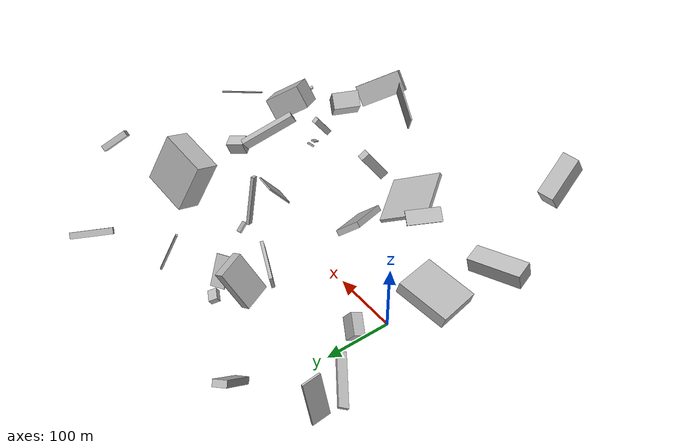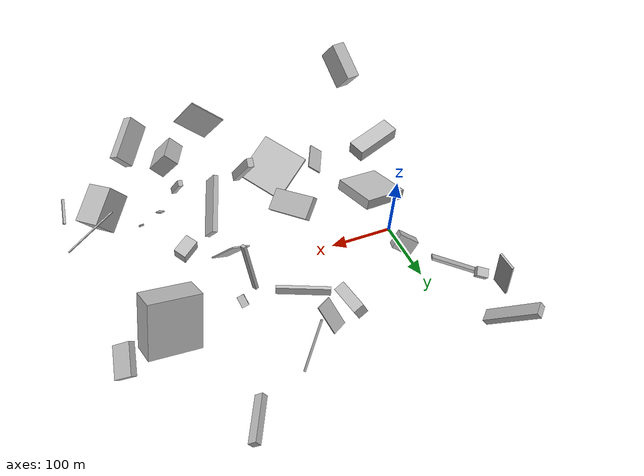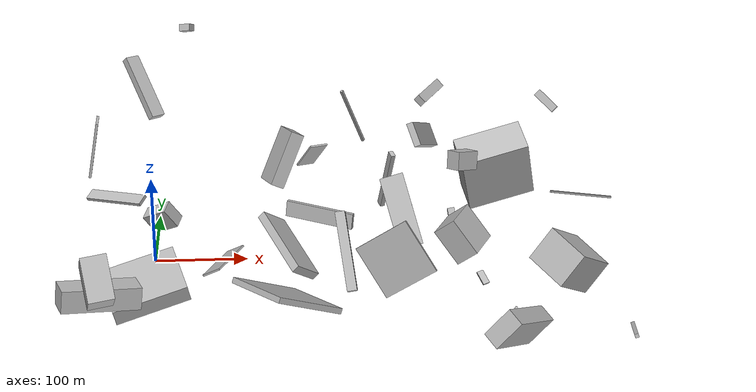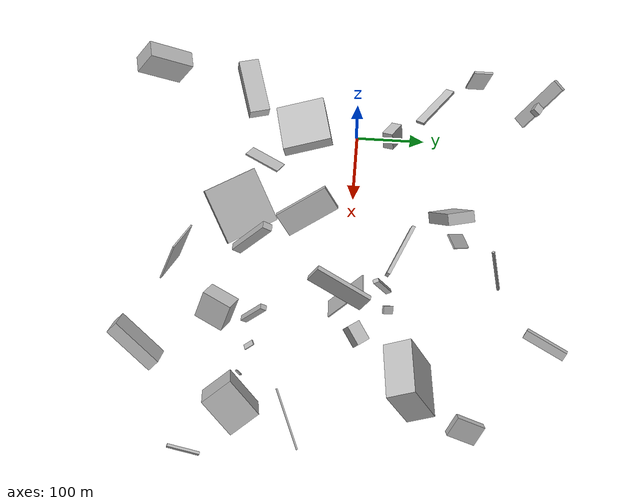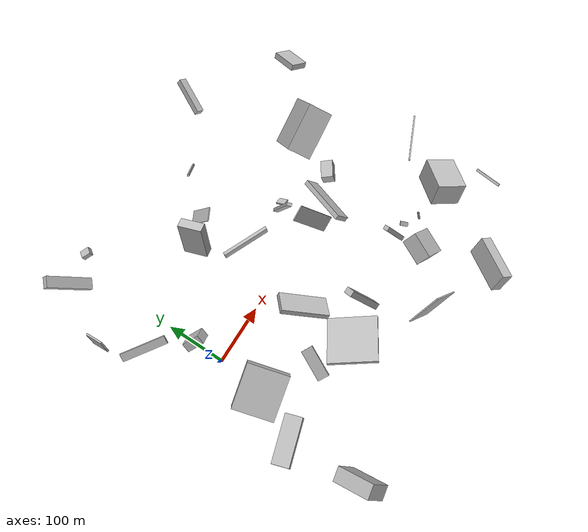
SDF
<sdf version="1.6">
 <world name="default">
  <scene>
   <sky><clouds><speed>12</speed></clouds></sky>
   <ambient>0.4 0.4 0.4 1</ambient>
   <background>0.7 0.7 0.7 1</background>
   <shadows>1</shadows>
  </scene>
  <gravity>0 0 -9.8066</gravity>
  <magnetic_field>6e-06 2.3e-05 -4.2e-05</magnetic_field>
  <physics default="0" name="default_physics" type="ode">
   <ode>
    <solver>
     <type>quick</type>
     <iters>10</iters>
     <sor>1.0</sor>
     <use_dynamic_moi_rescaling>0</use_dynamic_moi_rescaling>
    </solver>
    <constraints>
     <cfm>0</cfm>
     <erp>0.2</erp>
     <contact_max_correcting_vel>100</contact_max_correcting_vel>
     <contact_surface_layer>0.001</contact_surface_layer>
    </constraints>
   </ode>
   <max_step_size>0.004</max_step_size>
   <real_time_factor>1</real_time_factor>
   <real_time_update_rate>250</real_time_update_rate>
  </physics>
  <light name="sun" type="directional">
   <pose>0 0 10 0 0 0</pose>
   <diffuse>0.8 0.8 0.8 1</diffuse>
   <specular>0.2 0.2 0.2 1</specular>
   <attenuation>
    <range>1000</range>
    <constant>0.9</constant>
    <linear>0.01</linear>
    <quadratic>0.001</quadratic>
   </attenuation>
   <direction>-0.5 0.1 -0.9</direction>
  </light>
  <model name="building_1">
   <static>0</static>
   <pose>18.265541002460495 46.083040076944286 32.43423120301533 2.0796998660286277 0.32131733882747143 -1.8867793603360223</pose>
   <link name="link">
    <gravity>0</gravity>
    <pose>0 0 16.0 0 0 0</pose>
    <collision name="collision"><geometry><box><size>16 25 32</size></box></geometry></collision>
    <visual name="visual">
     <cast_shadows>0</cast_shadows>
     <geometry><box><size>16 25 32</size></box></geometry>
     <material>
      <script>
       <uri>model://HANNAS_wall/materials/scripts</uri>
       <uri>model://HANNAS_wall/materials/textures</uri>
       <name>vrc/HANNAS_wall</name>
      </script>
     </material>
    </visual>
   </link>
  </model>
  <model name="building_2">
   <static>0</static>
   <pose>-17.983890007790546 262.79387058333293 89.90950521232621 1.4102466719066682 -0.7541241065333378 -0.7375637108555613</pose>
   <link name="link">
    <gravity>0</gravity>
    <pose>0 0 9.0 0 0 0</pose>
    <collision name="collision"><geometry><box><size>9 80 18</size></box></geometry></collision>
    <visual name="visual">
     <cast_shadows>0</cast_shadows>
     <geometry><box><size>9 80 18</size></box></geometry>
     <material>
      <script>
       <uri>model://HANNAS_wall/materials/scripts</uri>
       <uri>model://HANNAS_wall/materials/textures</uri>
       <name>vrc/HANNAS_wall</name>
      </script>
     </material>
    </visual>
   </link>
  </model>
  <model name="building_3">
   <static>0</static>
   <pose>313.8914860704063 -131.33494192955447 76.24285865353437 0.18718537942882582 -0.6289172520342305 -1.657099727545331</pose>
   <link name="link">
    <gravity>0</gravity>
    <pose>0 0 24.0 0 0 0</pose>
    <collision name="collision"><geometry><box><size>9 7 48</size></box></geometry></collision>
    <visual name="visual">
     <cast_shadows>0</cast_shadows>
     <geometry><box><size>9 7 48</size></box></geometry>
     <material>
      <script>
       <uri>model://HANNAS_wall/materials/scripts</uri>
       <uri>model://HANNAS_wall/materials/textures</uri>
       <name>vrc/HANNAS_wall</name>
      </script>
     </material>
    </visual>
   </link>
  </model>
  <model name="building_4">
   <static>0</static>
   <pose>304.0788032327979 -158.6898377105259 110.06910643936789 0.8497594588884857 0.040560128187024716 1.1148889942754299</pose>
   <link name="link">
    <gravity>0</gravity>
    <pose>0 0 12.5 0 0 0</pose>
    <collision name="collision"><geometry><box><size>40 39 25</size></box></geometry></collision>
    <visual name="visual">
     <cast_shadows>0</cast_shadows>
     <geometry><box><size>40 39 25</size></box></geometry>
     <material>
      <script>
       <uri>model://HANNAS_wall/materials/scripts</uri>
       <uri>model://HANNAS_wall/materials/textures</uri>
       <name>vrc/HANNAS_wall</name>
      </script>
     </material>
    </visual>
   </link>
  </model>
  <model name="building_5">
   <static>0</static>
   <pose>-80.99406334003635 175.29140529267212 53.03134347957438 1.7545518483100713 0.07609060224564128 1.6130176660576054</pose>
   <link name="link">
    <gravity>0</gravity>
    <pose>0 0 1.5 0 0 0</pose>
    <collision name="collision"><geometry><box><size>27 68 3</size></box></geometry></collision>
    <visual name="visual">
     <cast_shadows>0</cast_shadows>
     <geometry><box><size>27 68 3</size></box></geometry>
     <material>
      <script>
       <uri>model://HANNAS_wall/materials/scripts</uri>
       <uri>model://HANNAS_wall/materials/textures</uri>
       <name>vrc/HANNAS_wall</name>
      </script>
     </material>
    </visual>
   </link>
  </model>
  <model name="building_6">
   <static>0</static>
   <pose>161.26148397386333 -94.99562241516497 37.81341449783922 -1.1294429303980962 0.6345326476909404 0.7506650084264824</pose>
   <link name="link">
    <gravity>0</gravity>
    <pose>0 0 40.0 0 0 0</pose>
    <collision name="collision"><geometry><box><size>36 9 80</size></box></geometry></collision>
    <visual name="visual">
     <cast_shadows>0</cast_shadows>
     <geometry><box><size>36 9 80</size></box></geometry>
     <material>
      <script>
       <uri>model://HANNAS_wall/materials/scripts</uri>
       <uri>model://HANNAS_wall/materials/textures</uri>
       <name>vrc/HANNAS_wall</name>
      </script>
     </material>
    </visual>
   </link>
  </model>
  <model name="building_7">
   <static>0</static>
   <pose>134.36413306917154 158.72428977492189 47.36783056296732 1.0752400505219164 -1.0248321617027825 0.7457237126499242</pose>
   <link name="link">
    <gravity>0</gravity>
    <pose>0 0 20.0 0 0 0</pose>
    <collision name="collision"><geometry><box><size>65 16 40</size></box></geometry></collision>
    <visual name="visual">
     <cast_shadows>0</cast_shadows>
     <geometry><box><size>65 16 40</size></box></geometry>
     <material>
      <script>
       <uri>model://HANNAS_wall/materials/scripts</uri>
       <uri>model://HANNAS_wall/materials/textures</uri>
       <name>vrc/HANNAS_wall</name>
      </script>
     </material>
    </visual>
   </link>
  </model>
  <model name="building_8">
   <static>0</static>
   <pose>206.17875969422664 -154.44131894354558 51.33544223301038 0.6173299713353829 0.16630867701832566 3.1313034820022594</pose>
   <link name="link">
    <gravity>0</gravity>
    <pose>0 0 40.0 0 0 0</pose>
    <collision name="collision"><geometry><box><size>10 14 80</size></box></geometry></collision>
    <visual name="visual">
     <cast_shadows>0</cast_shadows>
     <geometry><box><size>10 14 80</size></box></geometry>
     <material>
      <script>
       <uri>model://HANNAS_wall/materials/scripts</uri>
       <uri>model://HANNAS_wall/materials/textures</uri>
       <name>vrc/HANNAS_wall</name>
      </script>
     </material>
    </visual>
   </link>
  </model>
  <model name="building_9">
   <static>0</static>
   <pose>-7.309113164373815 -80.11171100656178 25.808819422333997 -2.9165752327797825 0.1139150292912665 -1.3144206211646154</pose>
   <link name="link">
    <gravity>0</gravity>
    <pose>0 0 8.5 0 0 0</pose>
    <collision name="collision"><geometry><box><size>72 80 17</size></box></geometry></collision>
    <visual name="visual">
     <cast_shadows>0</cast_shadows>
     <geometry><box><size>72 80 17</size></box></geometry>
     <material>
      <script>
       <uri>model://HANNAS_wall/materials/scripts</uri>
       <uri>model://HANNAS_wall/materials/textures</uri>
       <name>vrc/HANNAS_wall</name>
      </script>
     </material>
    </visual>
   </link>
  </model>
  <model name="building_10">
   <static>0</static>
   <pose>110.53042911366602 -173.64503171100733 67.30888535876636 2.768466732700812 -1.0492835858454677 0.9555197421061739</pose>
   <link name="link">
    <gravity>0</gravity>
    <pose>0 0 40.0 0 0 0</pose>
    <collision name="collision"><geometry><box><size>6 80 80</size></box></geometry></collision>
    <visual name="visual">
     <cast_shadows>0</cast_shadows>
     <geometry><box><size>6 80 80</size></box></geometry>
     <material>
      <script>
       <uri>model://HANNAS_wall/materials/scripts</uri>
       <uri>model://HANNAS_wall/materials/textures</uri>
       <name>vrc/HANNAS_wall</name>
      </script>
     </material>
    </visual>
   </link>
  </model>
  <model name="building_11">
   <static>0</static>
   <pose>165.2793010471291 146.117188659899 50.177551806339046 1.6965412428965363 -0.6583561573605212 1.9616489250245077</pose>
   <link name="link">
    <gravity>0</gravity>
    <pose>0 0 11.0 0 0 0</pose>
    <collision name="collision"><geometry><box><size>2 45 22</size></box></geometry></collision>
    <visual name="visual">
     <cast_shadows>0</cast_shadows>
     <geometry><box><size>2 45 22</size></box></geometry>
     <material>
      <script>
       <uri>model://HANNAS_wall/materials/scripts</uri>
       <uri>model://HANNAS_wall/materials/textures</uri>
       <name>vrc/HANNAS_wall</name>
      </script>
     </material>
    </visual>
   </link>
  </model>
  <model name="building_12">
   <static>0</static>
   <pose>90.4210251522565 -102.28279757551235 72.45496664842383 -1.5582350451654448 0.5747509461664084 2.6771038669529066</pose>
   <link name="link">
    <gravity>0</gravity>
    <pose>0 0 26.0 0 0 0</pose>
    <collision name="collision"><geometry><box><size>22 2 52</size></box></geometry></collision>
    <visual name="visual">
     <cast_shadows>0</cast_shadows>
     <geometry><box><size>22 2 52</size></box></geometry>
     <material>
      <script>
       <uri>model://HANNAS_wall/materials/scripts</uri>
       <uri>model://HANNAS_wall/materials/textures</uri>
       <name>vrc/HANNAS_wall</name>
      </script>
     </material>
    </visual>
   </link>
  </model>
  <model name="building_13">
   <static>0</static>
   <pose>144.66492083559024 89.04152041481588 13.659103035037283 -1.5944472664839189 -0.17865650644008235 -1.9873187592592076</pose>
   <link name="link">
    <gravity>0</gravity>
    <pose>0 0 40.0 0 0 0</pose>
    <collision name="collision"><geometry><box><size>5 18 80</size></box></geometry></collision>
    <visual name="visual">
     <cast_shadows>0</cast_shadows>
     <geometry><box><size>5 18 80</size></box></geometry>
     <material>
      <script>
       <uri>model://HANNAS_wall/materials/scripts</uri>
       <uri>model://HANNAS_wall/materials/textures</uri>
       <name>vrc/HANNAS_wall</name>
      </script>
     </material>
    </visual>
   </link>
  </model>
  <model name="building_14">
   <static>0</static>
   <pose>251.88997737494782 48.03405861332712 69.00199444174234 1.6046435566531305 -0.2862162751374198 1.930118034578801</pose>
   <link name="link">
    <gravity>0</gravity>
    <pose>0 0 2.5 0 0 0</pose>
    <collision name="collision"><geometry><box><size>8 75 5</size></box></geometry></collision>
    <visual name="visual">
     <cast_shadows>0</cast_shadows>
     <geometry><box><size>8 75 5</size></box></geometry>
     <material>
      <script>
       <uri>model://HANNAS_wall/materials/scripts</uri>
       <uri>model://HANNAS_wall/materials/textures</uri>
       <name>vrc/HANNAS_wall</name>
      </script>
     </material>
    </visual>
   </link>
  </model>
  <model name="building_15">
   <static>0</static>
   <pose>374.4145121486141 -241.6706514346999 63.73774618429702 -1.0709778807591486 -0.4931151684090535 2.2580161294457413</pose>
   <link name="link">
    <gravity>0</gravity>
    <pose>0 0 37.0 0 0 0</pose>
    <collision name="collision"><geometry><box><size>18 34 74</size></box></geometry></collision>
    <visual name="visual">
     <cast_shadows>0</cast_shadows>
     <geometry><box><size>18 34 74</size></box></geometry>
     <material>
      <script>
       <uri>model://HANNAS_wall/materials/scripts</uri>
       <uri>model://HANNAS_wall/materials/textures</uri>
       <name>vrc/HANNAS_wall</name>
      </script>
     </material>
    </visual>
   </link>
  </model>
  <model name="building_16">
   <static>0</static>
   <pose>456.8023341233861 154.22280260607008 99.90250303356879 0.8680768576082394 -0.4471278572657238 -1.7770121106217966</pose>
   <link name="link">
    <gravity>0</gravity>
    <pose>0 0 14.0 0 0 0</pose>
    <collision name="collision"><geometry><box><size>40 9 28</size></box></geometry></collision>
    <visual name="visual">
     <cast_shadows>0</cast_shadows>
     <geometry><box><size>40 9 28</size></box></geometry>
     <material>
      <script>
       <uri>model://HANNAS_wall/materials/scripts</uri>
       <uri>model://HANNAS_wall/materials/textures</uri>
       <name>vrc/HANNAS_wall</name>
      </script>
     </material>
    </visual>
   </link>
  </model>
  <model name="building_17">
   <static>0</static>
   <pose>-45.55279262322207 -157.0357984654406 42.405328461933735 -0.14716080735664366 -0.13451682296932715 -1.2525185846556424</pose>
   <link name="link">
    <gravity>0</gravity>
    <pose>0 0 11.5 0 0 0</pose>
    <collision name="collision"><geometry><box><size>29 80 23</size></box></geometry></collision>
    <visual name="visual">
     <cast_shadows>0</cast_shadows>
     <geometry><box><size>29 80 23</size></box></geometry>
     <material>
      <script>
       <uri>model://HANNAS_wall/materials/scripts</uri>
       <uri>model://HANNAS_wall/materials/textures</uri>
       <name>vrc/HANNAS_wall</name>
      </script>
     </material>
    </visual>
   </link>
  </model>
  <model name="building_18">
   <static>0</static>
   <pose>343.6070806140507 -123.49740952305174 45.791422089869286 -1.8224690834781203 1.0044992595008946 1.7464105338837623</pose>
   <link name="link">
    <gravity>0</gravity>
    <pose>0 0 3.5 0 0 0</pose>
    <collision name="collision"><geometry><box><size>2 15 7</size></box></geometry></collision>
    <visual name="visual">
     <cast_shadows>0</cast_shadows>
     <geometry><box><size>2 15 7</size></box></geometry>
     <material>
      <script>
       <uri>model://HANNAS_wall/materials/scripts</uri>
       <uri>model://HANNAS_wall/materials/textures</uri>
       <name>vrc/HANNAS_wall</name>
      </script>
     </material>
    </visual>
   </link>
  </model>
  <model name="building_19">
   <static>0</static>
   <pose>447.5805049229347 -61.59204561626373 103.66692804641251 -0.31450220965210135 -0.06535974234903005 -1.1405932782110482</pose>
   <link name="link">
    <gravity>0</gravity>
    <pose>0 0 1.0 0 0 0</pose>
    <collision name="collision"><geometry><box><size>2 80 2</size></box></geometry></collision>
    <visual name="visual">
     <cast_shadows>0</cast_shadows>
     <geometry><box><size>2 80 2</size></box></geometry>
     <material>
      <script>
       <uri>model://HANNAS_wall/materials/scripts</uri>
       <uri>model://HANNAS_wall/materials/textures</uri>
       <name>vrc/HANNAS_wall</name>
      </script>
     </material>
    </visual>
   </link>
  </model>
  <model name="building_20">
   <static>0</static>
   <pose>382.6745064044026 72.87423016412816 54.25479060209828 0.5943242293173583 -1.1235884775113516 -2.02070051168839</pose>
   <link name="link">
    <gravity>0</gravity>
    <pose>0 0 19.5 0 0 0</pose>
    <collision name="collision"><geometry><box><size>80 76 39</size></box></geometry></collision>
    <visual name="visual">
     <cast_shadows>0</cast_shadows>
     <geometry><box><size>80 76 39</size></box></geometry>
     <material>
      <script>
       <uri>model://HANNAS_wall/materials/scripts</uri>
       <uri>model://HANNAS_wall/materials/textures</uri>
       <name>vrc/HANNAS_wall</name>
      </script>
     </material>
    </visual>
   </link>
  </model>
  <model name="building_21">
   <static>0</static>
   <pose>268.73569086410333 58.384941312719235 10.978600197998158 -0.6867187966878666 0.39545642905804995 -0.03880639315715627</pose>
   <link name="link">
    <gravity>0</gravity>
    <pose>0 0 1.5 0 0 0</pose>
    <collision name="collision"><geometry><box><size>11 17 3</size></box></geometry></collision>
    <visual name="visual">
     <cast_shadows>0</cast_shadows>
     <geometry><box><size>11 17 3</size></box></geometry>
     <material>
      <script>
       <uri>model://HANNAS_wall/materials/scripts</uri>
       <uri>model://HANNAS_wall/materials/textures</uri>
       <name>vrc/HANNAS_wall</name>
      </script>
     </material>
    </visual>
   </link>
  </model>
  <model name="building_22">
   <static>0</static>
   <pose>-18.79025968061933 92.50223760807307 24.972236021358924 2.026095243784859 -1.128704931888774 -2.5928617885137375</pose>
   <link name="link">
    <gravity>0</gravity>
    <pose>0 0 40.0 0 0 0</pose>
    <collision name="collision"><geometry><box><size>4 14 80</size></box></geometry></collision>
    <visual name="visual">
     <cast_shadows>0</cast_shadows>
     <geometry><box><size>4 14 80</size></box></geometry>
     <material>
      <script>
       <uri>model://HANNAS_wall/materials/scripts</uri>
       <uri>model://HANNAS_wall/materials/textures</uri>
       <name>vrc/HANNAS_wall</name>
      </script>
     </material>
    </visual>
   </link>
  </model>
  <model name="building_23">
   <static>0</static>
   <pose>254.49485011784327 -0.2837712996253985 51.323486188678686 1.127543640512306 -0.8981395463899916 1.9793774234130213</pose>
   <link name="link">
    <gravity>0</gravity>
    <pose>0 0 13.0 0 0 0</pose>
    <collision name="collision"><geometry><box><size>80 2 26</size></box></geometry></collision>
    <visual name="visual">
     <cast_shadows>0</cast_shadows>
     <geometry><box><size>80 2 26</size></box></geometry>
     <material>
      <script>
       <uri>model://HANNAS_wall/materials/scripts</uri>
       <uri>model://HANNAS_wall/materials/textures</uri>
       <name>vrc/HANNAS_wall</name>
      </script>
     </material>
    </visual>
   </link>
  </model>
  <model name="building_24">
   <static>0</static>
   <pose>290.7675985853824 -12.742705586021884 139.70097279831708 0.4951722347096444 -0.4467645995369145 -1.9226609153249443</pose>
   <link name="link">
    <gravity>0</gravity>
    <pose>0 0 12.5 0 0 0</pose>
    <collision name="collision"><geometry><box><size>80 7 25</size></box></geometry></collision>
    <visual name="visual">
     <cast_shadows>0</cast_shadows>
     <geometry><box><size>80 7 25</size></box></geometry>
     <material>
      <script>
       <uri>model://HANNAS_wall/materials/scripts</uri>
       <uri>model://HANNAS_wall/materials/textures</uri>
       <name>vrc/HANNAS_wall</name>
      </script>
     </material>
    </visual>
   </link>
  </model>
  <model name="building_25">
   <static>0</static>
   <pose>344.23382968041267 25.428368167611374 103.66999526600024 -1.3298552548804006 0.22442885981386743 2.2225151998477335</pose>
   <link name="link">
    <gravity>0</gravity>
    <pose>0 0 13.5 0 0 0</pose>
    <collision name="collision"><geometry><box><size>18 20 27</size></box></geometry></collision>
    <visual name="visual">
     <cast_shadows>0</cast_shadows>
     <geometry><box><size>18 20 27</size></box></geometry>
     <material>
      <script>
       <uri>model://HANNAS_wall/materials/scripts</uri>
       <uri>model://HANNAS_wall/materials/textures</uri>
       <name>vrc/HANNAS_wall</name>
      </script>
     </material>
    </visual>
   </link>
  </model>
  <model name="building_26">
   <static>0</static>
   <pose>-34.251433276728264 -244.96539468174007 119.73847178382488 -0.11574107325193543 -0.9190093795298385 1.8833205265994406</pose>
   <link name="link">
    <gravity>0</gravity>
    <pose>0 0 32.0 0 0 0</pose>
    <collision name="collision"><geometry><box><size>41 24 64</size></box></geometry></collision>
    <visual name="visual">
     <cast_shadows>0</cast_shadows>
     <geometry><box><size>41 24 64</size></box></geometry>
     <material>
      <script>
       <uri>model://HANNAS_wall/materials/scripts</uri>
       <uri>model://HANNAS_wall/materials/textures</uri>
       <name>vrc/HANNAS_wall</name>
      </script>
     </material>
    </visual>
   </link>
  </model>
  <model name="building_27">
   <static>0</static>
   <pose>319.36357701602003 267.56746804469657 69.40810893456158 -0.04966562176599342 0.7067312705168404 -0.5175808603163954</pose>
   <link name="link">
    <gravity>0</gravity>
    <pose>0 0 4.5 0 0 0</pose>
    <collision name="collision"><geometry><box><size>12 59 9</size></box></geometry></collision>
    <visual name="visual">
     <cast_shadows>0</cast_shadows>
     <geometry><box><size>12 59 9</size></box></geometry>
     <material>
      <script>
       <uri>model://HANNAS_wall/materials/scripts</uri>
       <uri>model://HANNAS_wall/materials/textures</uri>
       <name>vrc/HANNAS_wall</name>
      </script>
     </material>
    </visual>
   </link>
  </model>
  <model name="building_28">
   <static>0</static>
   <pose>242.76946282417964 -223.1788703842108 127.08136680060068 1.8477826119292529 -0.8845540655075038 2.5193464934117964</pose>
   <link name="link">
    <gravity>0</gravity>
    <pose>0 0 1.0 0 0 0</pose>
    <collision name="collision"><geometry><box><size>55 59 2</size></box></geometry></collision>
    <visual name="visual">
     <cast_shadows>0</cast_shadows>
     <geometry><box><size>55 59 2</size></box></geometry>
     <material>
      <script>
       <uri>model://HANNAS_wall/materials/scripts</uri>
       <uri>model://HANNAS_wall/materials/textures</uri>
       <name>vrc/HANNAS_wall</name>
      </script>
     </material>
    </visual>
   </link>
  </model>
  <model name="building_29">
   <static>0</static>
   <pose>441.03807410078764 -119.41295797122073 55.39220057433994 0.4997304415938906 -0.9248681836147483 0.24013538282744257</pose>
   <link name="link">
    <gravity>0</gravity>
    <pose>0 0 29.5 0 0 0</pose>
    <collision name="collision"><geometry><box><size>38 46 59</size></box></geometry></collision>
    <visual name="visual">
     <cast_shadows>0</cast_shadows>
     <geometry><box><size>38 46 59</size></box></geometry>
     <material>
      <script>
       <uri>model://HANNAS_wall/materials/scripts</uri>
       <uri>model://HANNAS_wall/materials/textures</uri>
       <name>vrc/HANNAS_wall</name>
      </script>
     </material>
    </visual>
   </link>
  </model>
  <model name="building_30">
   <static>0</static>
   <pose>211.36035116212418 191.81623161713833 111.07182620492381 2.985353532046033 -0.3795493306521978 0.9712022138067317</pose>
   <link name="link">
    <gravity>0</gravity>
    <pose>0 0 40.0 0 0 0</pose>
    <collision name="collision"><geometry><box><size>3 3 80</size></box></geometry></collision>
    <visual name="visual">
     <cast_shadows>0</cast_shadows>
     <geometry><box><size>3 3 80</size></box></geometry>
     <material>
      <script>
       <uri>model://HANNAS_wall/materials/scripts</uri>
       <uri>model://HANNAS_wall/materials/textures</uri>
       <name>vrc/HANNAS_wall</name>
      </script>
     </material>
    </visual>
   </link>
  </model>
  <model name="building_31">
   <static>0</static>
   <pose>28.73304191936882 234.1766264424584 177.39459762556493 2.027221060428074 0.25053307359437843 2.6712991434781657</pose>
   <link name="link">
    <gravity>0</gravity>
    <pose>0 0 5.5 0 0 0</pose>
    <collision name="collision"><geometry><box><size>14 8 11</size></box></geometry></collision>
    <visual name="visual">
     <cast_shadows>0</cast_shadows>
     <geometry><box><size>14 8 11</size></box></geometry>
     <material>
      <script>
       <uri>model://HANNAS_wall/materials/scripts</uri>
       <uri>model://HANNAS_wall/materials/textures</uri>
       <name>vrc/HANNAS_wall</name>
      </script>
     </material>
    </visual>
   </link>
  </model>
  <model name="building_32">
   <static>0</static>
   <pose>371.5019819445095 -139.88255493363994 13.608034191136138 2.4948444471366176 -0.4752530678808589 2.7250354176696905</pose>
   <link name="link">
    <gravity>0</gravity>
    <pose>0 0 1.5 0 0 0</pose>
    <collision name="collision"><geometry><box><size>2 12 3</size></box></geometry></collision>
    <visual name="visual">
     <cast_shadows>0</cast_shadows>
     <geometry><box><size>2 12 3</size></box></geometry>
     <material>
      <script>
       <uri>model://HANNAS_wall/materials/scripts</uri>
       <uri>model://HANNAS_wall/materials/textures</uri>
       <name>vrc/HANNAS_wall</name>
      </script>
     </material>
    </visual>
   </link>
  </model>
  <model name="building_33">
   <static>0</static>
   <pose>482.29948597795965 -199.62258796231959 24.93543669054521 -0.32010497472098687 -0.3414307903878179 -0.03416072889652845</pose>
   <link name="link">
    <gravity>0</gravity>
    <pose>0 0 2.0 0 0 0</pose>
    <collision name="collision"><geometry><box><size>4 44 4</size></box></geometry></collision>
    <visual name="visual">
     <cast_shadows>0</cast_shadows>
     <geometry><box><size>4 44 4</size></box></geometry>
     <material>
      <script>
       <uri>model://HANNAS_wall/materials/scripts</uri>
       <uri>model://HANNAS_wall/materials/textures</uri>
       <name>vrc/HANNAS_wall</name>
      </script>
     </material>
    </visual>
   </link>
  </model>
 </world>
</sdf>
